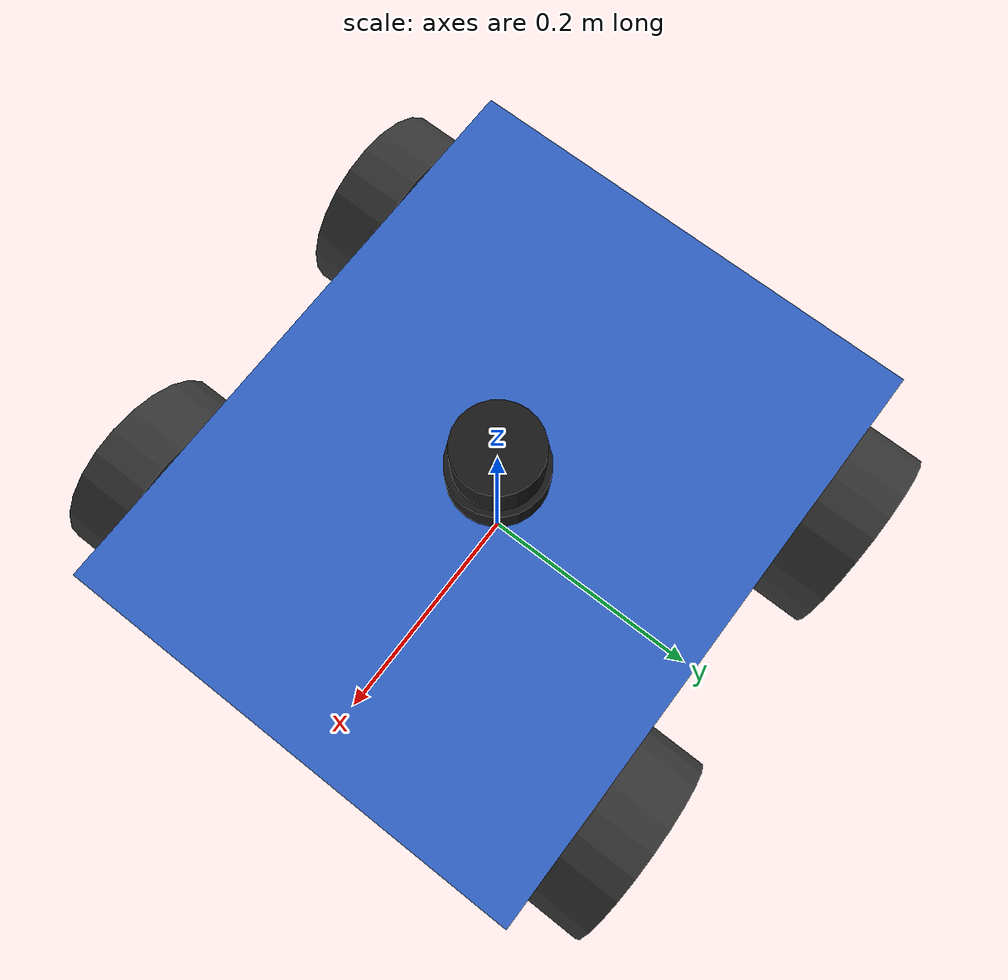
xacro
<?xml version="1.0"?>
<robot name="skid_robot" xmlns:xacro="http://www.ros.org/wiki/xacro">

  <!-- ===== パラメータ ===== -->
  <xacro:property name="base_length" value="0.50"/>
  <xacro:property name="base_width"  value="0.40"/>
  <xacro:property name="base_height" value="0.15"/>
  <xacro:property name="base_mass"   value="5.0"/>

  <xacro:property name="wheel_radius" value="0.08"/>
  <xacro:property name="wheel_width"  value="0.05"/>
  <xacro:property name="wheel_mass"   value="0.5"/>

  <!-- 車輪のX/Yオフセット -->
  <xacro:property name="wheel_x" value="0.15"/>
  <xacro:property name="wheel_y" value="0.225"/>

  <!-- LiDARの高さ（ベースリンク上面 + マウント） -->
  <xacro:property name="lidar_z" value="0.13"/>

  <!-- ===== マクロ：慣性テンソル ===== -->
  <xacro:macro name="box_inertia" params="m x y z">
    <inertial>
      <mass value="${m}"/>
      <inertia
        ixx="${m*(y*y+z*z)/12}" ixy="0" ixz="0"
        iyy="${m*(x*x+z*z)/12}" iyz="0"
        izz="${m*(x*x+y*y)/12}"/>
    </inertial>
  </xacro:macro>

  <xacro:macro name="cylinder_inertia" params="m r h">
    <inertial>
      <mass value="${m}"/>
      <inertia
        ixx="${m*(3*r*r+h*h)/12}" ixy="0" ixz="0"
        iyy="${m*(3*r*r+h*h)/12}" iyz="0"
        izz="${m*r*r/2}"/>
    </inertial>
  </xacro:macro>

  <!-- ===== マクロ：車輪 ===== -->
  <xacro:macro name="wheel" params="name x_sign y_sign">
    <link name="${name}_wheel">
      <visual>
        <geometry>
          <cylinder radius="${wheel_radius}" length="${wheel_width}"/>
        </geometry>
        <material name="dark_gray">
          <color rgba="0.2 0.2 0.2 1.0"/>
        </material>
      </visual>
      <collision>
        <geometry>
          <cylinder radius="${wheel_radius}" length="${wheel_width}"/>
        </geometry>
      </collision>
      <xacro:cylinder_inertia m="${wheel_mass}" r="${wheel_radius}" h="${wheel_width}"/>
    </link>

    <joint name="${name}_wheel_joint" type="continuous">
      <parent link="base_link"/>
      <child  link="${name}_wheel"/>
      <!-- 車輪はY軸回りに回転 → 90度傾けて配置 -->
      <origin xyz="${x_sign*wheel_x} ${y_sign*wheel_y} 0"
              rpy="${pi/2} 0 0"/>
      <axis xyz="0 0 -1"/>
    </joint>

    <!-- Gazeboプラグイン用の摩擦設定 -->
    <gazebo reference="${name}_wheel">
      <mu1>1.0</mu1>
      <mu2>1.0</mu2>
      <kp>1e6</kp>
      <kd>1.0</kd>
    </gazebo>
  </xacro:macro>

  <!-- ===== ベースリンク ===== -->
  <link name="base_footprint"/>

  <joint name="base_footprint_joint" type="fixed">
    <parent link="base_footprint"/>
    <child  link="base_link"/>
    <origin xyz="0 0 ${wheel_radius}" rpy="0 0 0"/>
  </joint>

  <link name="base_link">
    <visual>
      <geometry>
        <box size="${base_length} ${base_width} ${base_height}"/>
      </geometry>
      <material name="blue">
        <color rgba="0.2 0.4 0.8 1.0"/>
      </material>
    </visual>
    <collision>
      <geometry>
        <box size="${base_length} ${base_width} ${base_height}"/>
      </geometry>
    </collision>
    <xacro:box_inertia m="${base_mass}"
                       x="${base_length}" y="${base_width}" z="${base_height}"/>
  </link>

  <xacro:wheel name="front_left"  x_sign=" 1" y_sign=" 1"/>
  <xacro:wheel name="front_right" x_sign=" 1" y_sign="-1"/>
  <xacro:wheel name="rear_left"   x_sign="-1" y_sign=" 1"/>
  <xacro:wheel name="rear_right"  x_sign="-1" y_sign="-1"/>

  <!-- ===== LiDARマウント ===== -->
  <link name="lidar_mount">
    <visual>
      <geometry>
        <cylinder radius="0.04" length="0.03"/>
      </geometry>
      <material name="black">
        <color rgba="0.1 0.1 0.1 1.0"/>
      </material>
    </visual>
    <collision>
      <geometry>
        <cylinder radius="0.04" length="0.03"/>
      </geometry>
    </collision>
    <inertial>
      <mass value="0.1"/>
      <inertia ixx="1e-4" ixy="0" ixz="0"
               iyy="1e-4" iyz="0" izz="1e-4"/>
    </inertial>
  </link>

  <joint name="lidar_mount_joint" type="fixed">
    <parent link="base_link"/>
    <child  link="lidar_mount"/>
    <origin xyz="0 0 ${base_height/2 + 0.015}" rpy="0 0 0"/>
  </joint>

  <!-- ===== 2D LiDARリンク ===== -->
  <link name="lidar_link">
    <visual>
      <geometry>
        <cylinder radius="0.035" length="0.04"/>
      </geometry>
      <material name="black"/>
    </visual>
    <collision>
      <geometry>
        <cylinder radius="0.035" length="0.04"/>
      </geometry>
    </collision>
    <inertial>
      <mass value="0.05"/>
      <inertia ixx="1e-5" ixy="0" ixz="0"
               iyy="1e-5" iyz="0" izz="1e-5"/>
    </inertial>
  </link>

  <joint name="lidar_joint" type="fixed">
    <parent link="lidar_mount"/>
    <child  link="lidar_link"/>
    <origin xyz="0 0 0.035" rpy="0 0 0"/>
  </joint>

  <!-- ===== Gazebo: スキッドステアプラグイン ===== -->
  <gazebo>
    <plugin filename="libgz-sim-diff-drive-system.so"
            name="gz::sim::systems::DiffDrive">
      <!-- スキッドステア：左右2輪ずつ同速 -->
      <left_joint>front_left_wheel_joint</left_joint>
      <left_joint>rear_left_wheel_joint</left_joint>
      <right_joint>front_right_wheel_joint</right_joint>
      <right_joint>rear_right_wheel_joint</right_joint>
      <wheel_separation>${wheel_y * 2}</wheel_separation>
      <wheel_radius>${wheel_radius}</wheel_radius>
      <odom_publish_frequency>30</odom_publish_frequency>
      <topic>cmd_vel</topic>
      <odom_topic>odom</odom_topic>
      <frame_id>odom</frame_id>
      <child_frame_id>base_footprint</child_frame_id>
    </plugin>
  </gazebo>

  <!-- ===== Gazebo: 3D LiDARリンク（Livox Mid-360） ===== -->
  <gazebo reference="lidar_link">
    <sensor name="lidar_sensor" type="gpu_lidar">
      <topic>scan</topic>
      <update_rate>15</update_rate>
      <gz_frame_id>lidar_link</gz_frame_id>
      <lidar>
        <scan>
          <horizontal>
            <samples>360</samples>
            <resolution>1</resolution>
            <min_angle>-3.14159</min_angle>
            <max_angle>3.14159</max_angle>
          </horizontal>
          <!-- 2D: 垂直方向は1本のみ -->
          <vertical>
            <samples>16</samples>
            <resolution>1</resolution>
            <min_angle>-0.1222</min_angle>
            <max_angle>0.9076</max_angle>
          </vertical>
        </scan>
        <range>
          <min>0.15</min>
          <max>15.0</max>
          <resolution>0.01</resolution>
        </range>
        <noise>
          <type>gaussian</type>
          <mean>0.0</mean>
          <stddev>0.01</stddev>
        </noise>
      </lidar>
      <always_on>true</always_on>
      <visualize>true</visualize>
    </sensor>
  </gazebo>

  <!-- ===== Gazebo: IMU（オドメトリ補助用） ===== -->
  <gazebo reference="base_link">
    <sensor name="imu_sensor" type="imu">
      <topic>imu</topic>
      <update_rate>100</update_rate>
      <always_on>true</always_on>
    </sensor>
  </gazebo>

</robot>
